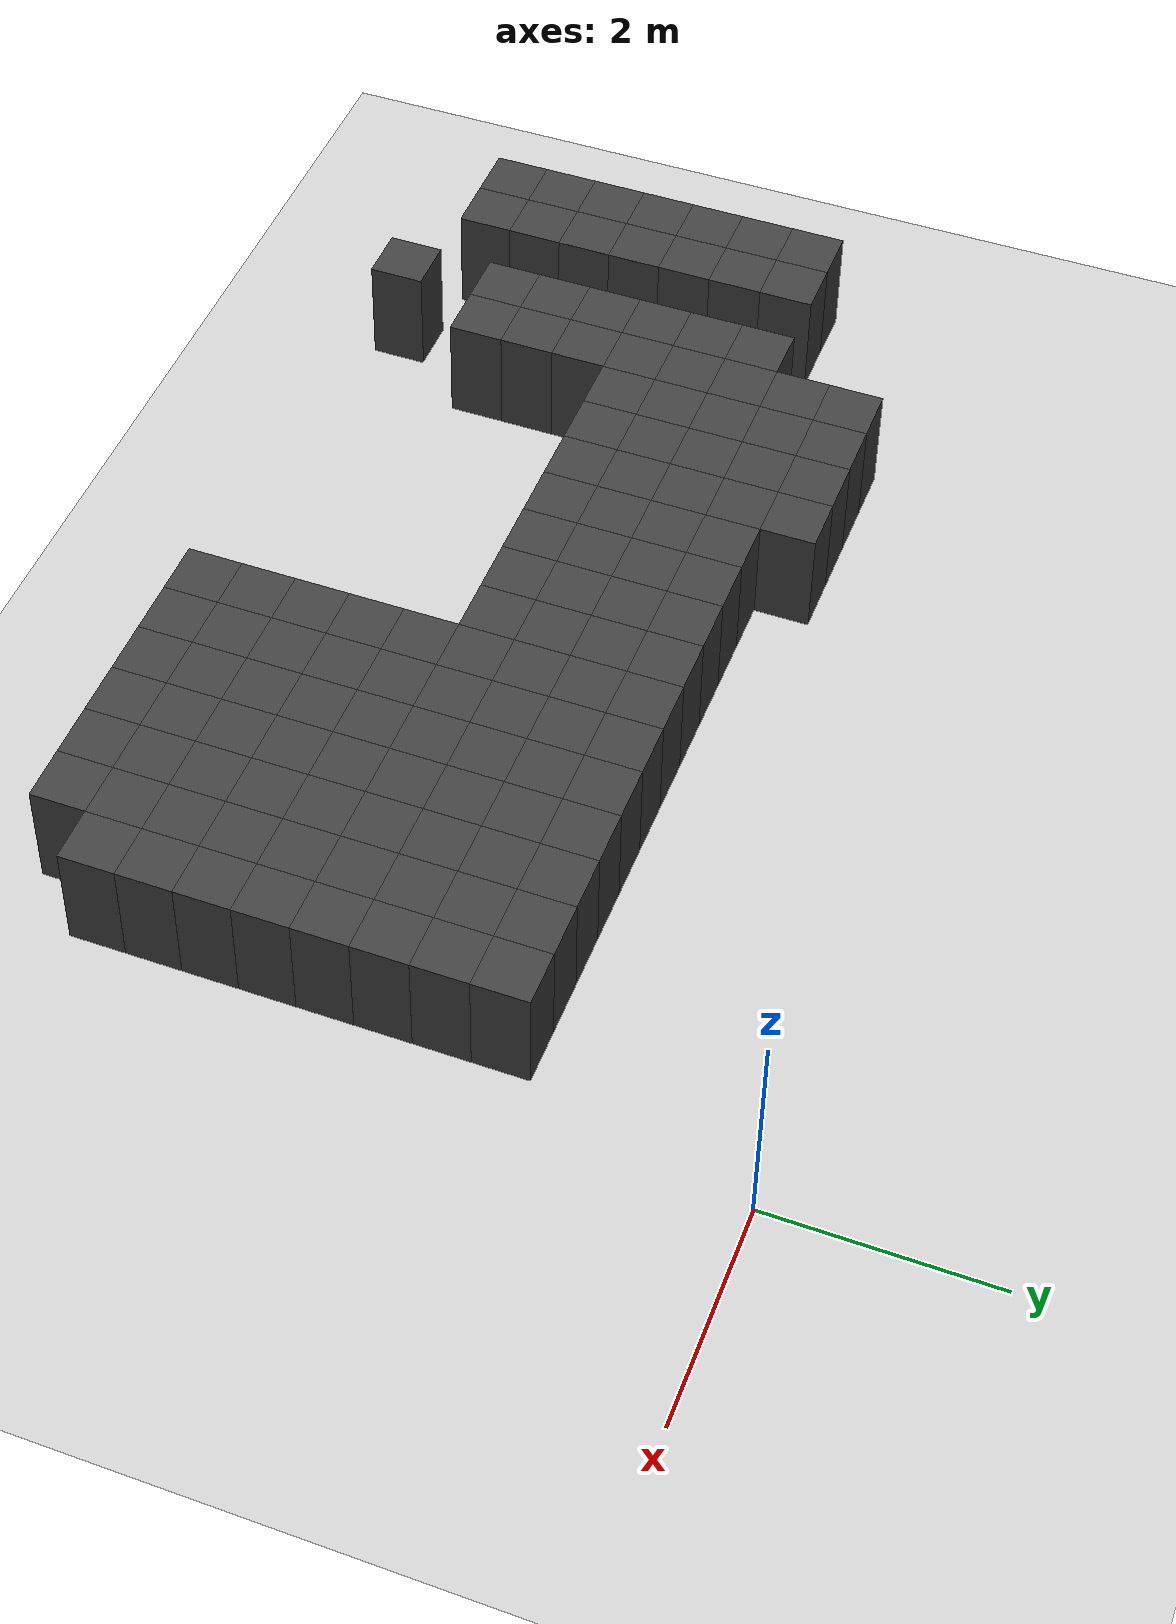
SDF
<sdf version="1.7">
 <world name="map_14888">
  <model name="ground_plane">
   <static>true</static>
   <link name="link">
    <collision name="collision">
     <geometry><plane><normal>0 0 1</normal><size>200 200</size></plane></geometry>
    </collision>
    <visual name="visual">
     <geometry><plane><normal>0 0 1</normal><size>200 200</size></plane></geometry>
     <material><ambient>0.8 0.8 0.8 1</ambient><diffuse>0.8 0.8 0.8 1</diffuse></material>
    </visual>
   </link>
  </model>
  <model name="maze_environment">
   <static>true</static>
   <link name="wall_994">
    <pose>-7.750 -1.750 0.500 0 0 0</pose>
    <collision name="col"><geometry><box><size>0.5 0.5 1.0</size></box></geometry></collision>
    <visual name="vis">
     <geometry><box><size>0.5 0.5 1.0</size></box></geometry>
     <material><ambient>0.15 0.15 0.15 1</ambient><diffuse>0.25 0.25 0.25 1</diffuse></material>
    </visual>
   </link>
   <link name="wall_995">
    <pose>-7.250 -1.750 0.500 0 0 0</pose>
    <collision name="col"><geometry><box><size>0.5 0.5 1.0</size></box></geometry></collision>
    <visual name="vis">
     <geometry><box><size>0.5 0.5 1.0</size></box></geometry>
     <material><ambient>0.15 0.15 0.15 1</ambient><diffuse>0.25 0.25 0.25 1</diffuse></material>
    </visual>
   </link>
   <link name="wall_996">
    <pose>-6.750 -1.750 0.500 0 0 0</pose>
    <collision name="col"><geometry><box><size>0.5 0.5 1.0</size></box></geometry></collision>
    <visual name="vis">
     <geometry><box><size>0.5 0.5 1.0</size></box></geometry>
     <material><ambient>0.15 0.15 0.15 1</ambient><diffuse>0.25 0.25 0.25 1</diffuse></material>
    </visual>
   </link>
   <link name="wall_997">
    <pose>-6.250 -1.750 0.500 0 0 0</pose>
    <collision name="col"><geometry><box><size>0.5 0.5 1.0</size></box></geometry></collision>
    <visual name="vis">
     <geometry><box><size>0.5 0.5 1.0</size></box></geometry>
     <material><ambient>0.15 0.15 0.15 1</ambient><diffuse>0.25 0.25 0.25 1</diffuse></material>
    </visual>
   </link>
   <link name="wall_1040">
    <pose>-7.750 -2.250 0.500 0 0 0</pose>
    <collision name="col"><geometry><box><size>0.5 0.5 1.0</size></box></geometry></collision>
    <visual name="vis">
     <geometry><box><size>0.5 0.5 1.0</size></box></geometry>
     <material><ambient>0.15 0.15 0.15 1</ambient><diffuse>0.25 0.25 0.25 1</diffuse></material>
    </visual>
   </link>
   <link name="wall_1041">
    <pose>-7.250 -2.250 0.500 0 0 0</pose>
    <collision name="col"><geometry><box><size>0.5 0.5 1.0</size></box></geometry></collision>
    <visual name="vis">
     <geometry><box><size>0.5 0.5 1.0</size></box></geometry>
     <material><ambient>0.15 0.15 0.15 1</ambient><diffuse>0.25 0.25 0.25 1</diffuse></material>
    </visual>
   </link>
   <link name="wall_1042">
    <pose>-6.750 -2.250 0.500 0 0 0</pose>
    <collision name="col"><geometry><box><size>0.5 0.5 1.0</size></box></geometry></collision>
    <visual name="vis">
     <geometry><box><size>0.5 0.5 1.0</size></box></geometry>
     <material><ambient>0.15 0.15 0.15 1</ambient><diffuse>0.25 0.25 0.25 1</diffuse></material>
    </visual>
   </link>
   <link name="wall_1043">
    <pose>-6.250 -2.250 0.500 0 0 0</pose>
    <collision name="col"><geometry><box><size>0.5 0.5 1.0</size></box></geometry></collision>
    <visual name="vis">
     <geometry><box><size>0.5 0.5 1.0</size></box></geometry>
     <material><ambient>0.15 0.15 0.15 1</ambient><diffuse>0.25 0.25 0.25 1</diffuse></material>
    </visual>
   </link>
   <link name="wall_1044">
    <pose>-5.750 -2.250 0.500 0 0 0</pose>
    <collision name="col"><geometry><box><size>0.5 0.5 1.0</size></box></geometry></collision>
    <visual name="vis">
     <geometry><box><size>0.5 0.5 1.0</size></box></geometry>
     <material><ambient>0.15 0.15 0.15 1</ambient><diffuse>0.25 0.25 0.25 1</diffuse></material>
    </visual>
   </link>
   <link name="wall_1045">
    <pose>-5.250 -2.250 0.500 0 0 0</pose>
    <collision name="col"><geometry><box><size>0.5 0.5 1.0</size></box></geometry></collision>
    <visual name="vis">
     <geometry><box><size>0.5 0.5 1.0</size></box></geometry>
     <material><ambient>0.15 0.15 0.15 1</ambient><diffuse>0.25 0.25 0.25 1</diffuse></material>
    </visual>
   </link>
   <link name="wall_1046">
    <pose>-4.750 -2.250 0.500 0 0 0</pose>
    <collision name="col"><geometry><box><size>0.5 0.5 1.0</size></box></geometry></collision>
    <visual name="vis">
     <geometry><box><size>0.5 0.5 1.0</size></box></geometry>
     <material><ambient>0.15 0.15 0.15 1</ambient><diffuse>0.25 0.25 0.25 1</diffuse></material>
    </visual>
   </link>
   <link name="wall_1047">
    <pose>-4.250 -2.250 0.500 0 0 0</pose>
    <collision name="col"><geometry><box><size>0.5 0.5 1.0</size></box></geometry></collision>
    <visual name="vis">
     <geometry><box><size>0.5 0.5 1.0</size></box></geometry>
     <material><ambient>0.15 0.15 0.15 1</ambient><diffuse>0.25 0.25 0.25 1</diffuse></material>
    </visual>
   </link>
   <link name="wall_1048">
    <pose>-3.750 -2.250 0.500 0 0 0</pose>
    <collision name="col"><geometry><box><size>0.5 0.5 1.0</size></box></geometry></collision>
    <visual name="vis">
     <geometry><box><size>0.5 0.5 1.0</size></box></geometry>
     <material><ambient>0.15 0.15 0.15 1</ambient><diffuse>0.25 0.25 0.25 1</diffuse></material>
    </visual>
   </link>
   <link name="wall_1049">
    <pose>-3.250 -2.250 0.500 0 0 0</pose>
    <collision name="col"><geometry><box><size>0.5 0.5 1.0</size></box></geometry></collision>
    <visual name="vis">
     <geometry><box><size>0.5 0.5 1.0</size></box></geometry>
     <material><ambient>0.15 0.15 0.15 1</ambient><diffuse>0.25 0.25 0.25 1</diffuse></material>
    </visual>
   </link>
   <link name="wall_1050">
    <pose>-2.750 -2.250 0.500 0 0 0</pose>
    <collision name="col"><geometry><box><size>0.5 0.5 1.0</size></box></geometry></collision>
    <visual name="vis">
     <geometry><box><size>0.5 0.5 1.0</size></box></geometry>
     <material><ambient>0.15 0.15 0.15 1</ambient><diffuse>0.25 0.25 0.25 1</diffuse></material>
    </visual>
   </link>
   <link name="wall_1051">
    <pose>-2.250 -2.250 0.500 0 0 0</pose>
    <collision name="col"><geometry><box><size>0.5 0.5 1.0</size></box></geometry></collision>
    <visual name="vis">
     <geometry><box><size>0.5 0.5 1.0</size></box></geometry>
     <material><ambient>0.15 0.15 0.15 1</ambient><diffuse>0.25 0.25 0.25 1</diffuse></material>
    </visual>
   </link>
   <link name="wall_1052">
    <pose>-1.750 -2.250 0.500 0 0 0</pose>
    <collision name="col"><geometry><box><size>0.5 0.5 1.0</size></box></geometry></collision>
    <visual name="vis">
     <geometry><box><size>0.5 0.5 1.0</size></box></geometry>
     <material><ambient>0.15 0.15 0.15 1</ambient><diffuse>0.25 0.25 0.25 1</diffuse></material>
    </visual>
   </link>
   <link name="wall_1053">
    <pose>-1.250 -2.250 0.500 0 0 0</pose>
    <collision name="col"><geometry><box><size>0.5 0.5 1.0</size></box></geometry></collision>
    <visual name="vis">
     <geometry><box><size>0.5 0.5 1.0</size></box></geometry>
     <material><ambient>0.15 0.15 0.15 1</ambient><diffuse>0.25 0.25 0.25 1</diffuse></material>
    </visual>
   </link>
   <link name="wall_1054">
    <pose>-0.750 -2.250 0.500 0 0 0</pose>
    <collision name="col"><geometry><box><size>0.5 0.5 1.0</size></box></geometry></collision>
    <visual name="vis">
     <geometry><box><size>0.5 0.5 1.0</size></box></geometry>
     <material><ambient>0.15 0.15 0.15 1</ambient><diffuse>0.25 0.25 0.25 1</diffuse></material>
    </visual>
   </link>
   <link name="wall_1086">
    <pose>-9.750 -2.750 0.500 0 0 0</pose>
    <collision name="col"><geometry><box><size>0.5 0.5 1.0</size></box></geometry></collision>
    <visual name="vis">
     <geometry><box><size>0.5 0.5 1.0</size></box></geometry>
     <material><ambient>0.15 0.15 0.15 1</ambient><diffuse>0.25 0.25 0.25 1</diffuse></material>
    </visual>
   </link>
   <link name="wall_1087">
    <pose>-9.250 -2.750 0.500 0 0 0</pose>
    <collision name="col"><geometry><box><size>0.5 0.5 1.0</size></box></geometry></collision>
    <visual name="vis">
     <geometry><box><size>0.5 0.5 1.0</size></box></geometry>
     <material><ambient>0.15 0.15 0.15 1</ambient><diffuse>0.25 0.25 0.25 1</diffuse></material>
    </visual>
   </link>
   <link name="wall_1088">
    <pose>-8.250 -2.750 0.500 0 0 0</pose>
    <collision name="col"><geometry><box><size>0.5 0.5 1.0</size></box></geometry></collision>
    <visual name="vis">
     <geometry><box><size>0.5 0.5 1.0</size></box></geometry>
     <material><ambient>0.15 0.15 0.15 1</ambient><diffuse>0.25 0.25 0.25 1</diffuse></material>
    </visual>
   </link>
   <link name="wall_1089">
    <pose>-7.750 -2.750 0.500 0 0 0</pose>
    <collision name="col"><geometry><box><size>0.5 0.5 1.0</size></box></geometry></collision>
    <visual name="vis">
     <geometry><box><size>0.5 0.5 1.0</size></box></geometry>
     <material><ambient>0.15 0.15 0.15 1</ambient><diffuse>0.25 0.25 0.25 1</diffuse></material>
    </visual>
   </link>
   <link name="wall_1090">
    <pose>-7.250 -2.750 0.500 0 0 0</pose>
    <collision name="col"><geometry><box><size>0.5 0.5 1.0</size></box></geometry></collision>
    <visual name="vis">
     <geometry><box><size>0.5 0.5 1.0</size></box></geometry>
     <material><ambient>0.15 0.15 0.15 1</ambient><diffuse>0.25 0.25 0.25 1</diffuse></material>
    </visual>
   </link>
   <link name="wall_1091">
    <pose>-6.750 -2.750 0.500 0 0 0</pose>
    <collision name="col"><geometry><box><size>0.5 0.5 1.0</size></box></geometry></collision>
    <visual name="vis">
     <geometry><box><size>0.5 0.5 1.0</size></box></geometry>
     <material><ambient>0.15 0.15 0.15 1</ambient><diffuse>0.25 0.25 0.25 1</diffuse></material>
    </visual>
   </link>
   <link name="wall_1092">
    <pose>-6.250 -2.750 0.500 0 0 0</pose>
    <collision name="col"><geometry><box><size>0.5 0.5 1.0</size></box></geometry></collision>
    <visual name="vis">
     <geometry><box><size>0.5 0.5 1.0</size></box></geometry>
     <material><ambient>0.15 0.15 0.15 1</ambient><diffuse>0.25 0.25 0.25 1</diffuse></material>
    </visual>
   </link>
   <link name="wall_1093">
    <pose>-5.750 -2.750 0.500 0 0 0</pose>
    <collision name="col"><geometry><box><size>0.5 0.5 1.0</size></box></geometry></collision>
    <visual name="vis">
     <geometry><box><size>0.5 0.5 1.0</size></box></geometry>
     <material><ambient>0.15 0.15 0.15 1</ambient><diffuse>0.25 0.25 0.25 1</diffuse></material>
    </visual>
   </link>
   <link name="wall_1094">
    <pose>-5.250 -2.750 0.500 0 0 0</pose>
    <collision name="col"><geometry><box><size>0.5 0.5 1.0</size></box></geometry></collision>
    <visual name="vis">
     <geometry><box><size>0.5 0.5 1.0</size></box></geometry>
     <material><ambient>0.15 0.15 0.15 1</ambient><diffuse>0.25 0.25 0.25 1</diffuse></material>
    </visual>
   </link>
   <link name="wall_1095">
    <pose>-4.750 -2.750 0.500 0 0 0</pose>
    <collision name="col"><geometry><box><size>0.5 0.5 1.0</size></box></geometry></collision>
    <visual name="vis">
     <geometry><box><size>0.5 0.5 1.0</size></box></geometry>
     <material><ambient>0.15 0.15 0.15 1</ambient><diffuse>0.25 0.25 0.25 1</diffuse></material>
    </visual>
   </link>
   <link name="wall_1096">
    <pose>-4.250 -2.750 0.500 0 0 0</pose>
    <collision name="col"><geometry><box><size>0.5 0.5 1.0</size></box></geometry></collision>
    <visual name="vis">
     <geometry><box><size>0.5 0.5 1.0</size></box></geometry>
     <material><ambient>0.15 0.15 0.15 1</ambient><diffuse>0.25 0.25 0.25 1</diffuse></material>
    </visual>
   </link>
   <link name="wall_1097">
    <pose>-3.750 -2.750 0.500 0 0 0</pose>
    <collision name="col"><geometry><box><size>0.5 0.5 1.0</size></box></geometry></collision>
    <visual name="vis">
     <geometry><box><size>0.5 0.5 1.0</size></box></geometry>
     <material><ambient>0.15 0.15 0.15 1</ambient><diffuse>0.25 0.25 0.25 1</diffuse></material>
    </visual>
   </link>
   <link name="wall_1098">
    <pose>-3.250 -2.750 0.500 0 0 0</pose>
    <collision name="col"><geometry><box><size>0.5 0.5 1.0</size></box></geometry></collision>
    <visual name="vis">
     <geometry><box><size>0.5 0.5 1.0</size></box></geometry>
     <material><ambient>0.15 0.15 0.15 1</ambient><diffuse>0.25 0.25 0.25 1</diffuse></material>
    </visual>
   </link>
   <link name="wall_1099">
    <pose>-2.750 -2.750 0.500 0 0 0</pose>
    <collision name="col"><geometry><box><size>0.5 0.5 1.0</size></box></geometry></collision>
    <visual name="vis">
     <geometry><box><size>0.5 0.5 1.0</size></box></geometry>
     <material><ambient>0.15 0.15 0.15 1</ambient><diffuse>0.25 0.25 0.25 1</diffuse></material>
    </visual>
   </link>
   <link name="wall_1100">
    <pose>-2.250 -2.750 0.500 0 0 0</pose>
    <collision name="col"><geometry><box><size>0.5 0.5 1.0</size></box></geometry></collision>
    <visual name="vis">
     <geometry><box><size>0.5 0.5 1.0</size></box></geometry>
     <material><ambient>0.15 0.15 0.15 1</ambient><diffuse>0.25 0.25 0.25 1</diffuse></material>
    </visual>
   </link>
   <link name="wall_1101">
    <pose>-1.750 -2.750 0.500 0 0 0</pose>
    <collision name="col"><geometry><box><size>0.5 0.5 1.0</size></box></geometry></collision>
    <visual name="vis">
     <geometry><box><size>0.5 0.5 1.0</size></box></geometry>
     <material><ambient>0.15 0.15 0.15 1</ambient><diffuse>0.25 0.25 0.25 1</diffuse></material>
    </visual>
   </link>
   <link name="wall_1102">
    <pose>-1.250 -2.750 0.500 0 0 0</pose>
    <collision name="col"><geometry><box><size>0.5 0.5 1.0</size></box></geometry></collision>
    <visual name="vis">
     <geometry><box><size>0.5 0.5 1.0</size></box></geometry>
     <material><ambient>0.15 0.15 0.15 1</ambient><diffuse>0.25 0.25 0.25 1</diffuse></material>
    </visual>
   </link>
   <link name="wall_1103">
    <pose>-0.750 -2.750 0.500 0 0 0</pose>
    <collision name="col"><geometry><box><size>0.5 0.5 1.0</size></box></geometry></collision>
    <visual name="vis">
     <geometry><box><size>0.5 0.5 1.0</size></box></geometry>
     <material><ambient>0.15 0.15 0.15 1</ambient><diffuse>0.25 0.25 0.25 1</diffuse></material>
    </visual>
   </link>
   <link name="wall_1135">
    <pose>-9.750 -3.250 0.500 0 0 0</pose>
    <collision name="col"><geometry><box><size>0.5 0.5 1.0</size></box></geometry></collision>
    <visual name="vis">
     <geometry><box><size>0.5 0.5 1.0</size></box></geometry>
     <material><ambient>0.15 0.15 0.15 1</ambient><diffuse>0.25 0.25 0.25 1</diffuse></material>
    </visual>
   </link>
   <link name="wall_1136">
    <pose>-9.250 -3.250 0.500 0 0 0</pose>
    <collision name="col"><geometry><box><size>0.5 0.5 1.0</size></box></geometry></collision>
    <visual name="vis">
     <geometry><box><size>0.5 0.5 1.0</size></box></geometry>
     <material><ambient>0.15 0.15 0.15 1</ambient><diffuse>0.25 0.25 0.25 1</diffuse></material>
    </visual>
   </link>
   <link name="wall_1137">
    <pose>-8.250 -3.250 0.500 0 0 0</pose>
    <collision name="col"><geometry><box><size>0.5 0.5 1.0</size></box></geometry></collision>
    <visual name="vis">
     <geometry><box><size>0.5 0.5 1.0</size></box></geometry>
     <material><ambient>0.15 0.15 0.15 1</ambient><diffuse>0.25 0.25 0.25 1</diffuse></material>
    </visual>
   </link>
   <link name="wall_1138">
    <pose>-7.750 -3.250 0.500 0 0 0</pose>
    <collision name="col"><geometry><box><size>0.5 0.5 1.0</size></box></geometry></collision>
    <visual name="vis">
     <geometry><box><size>0.5 0.5 1.0</size></box></geometry>
     <material><ambient>0.15 0.15 0.15 1</ambient><diffuse>0.25 0.25 0.25 1</diffuse></material>
    </visual>
   </link>
   <link name="wall_1139">
    <pose>-7.250 -3.250 0.500 0 0 0</pose>
    <collision name="col"><geometry><box><size>0.5 0.5 1.0</size></box></geometry></collision>
    <visual name="vis">
     <geometry><box><size>0.5 0.5 1.0</size></box></geometry>
     <material><ambient>0.15 0.15 0.15 1</ambient><diffuse>0.25 0.25 0.25 1</diffuse></material>
    </visual>
   </link>
   <link name="wall_1140">
    <pose>-6.750 -3.250 0.500 0 0 0</pose>
    <collision name="col"><geometry><box><size>0.5 0.5 1.0</size></box></geometry></collision>
    <visual name="vis">
     <geometry><box><size>0.5 0.5 1.0</size></box></geometry>
     <material><ambient>0.15 0.15 0.15 1</ambient><diffuse>0.25 0.25 0.25 1</diffuse></material>
    </visual>
   </link>
   <link name="wall_1141">
    <pose>-6.250 -3.250 0.500 0 0 0</pose>
    <collision name="col"><geometry><box><size>0.5 0.5 1.0</size></box></geometry></collision>
    <visual name="vis">
     <geometry><box><size>0.5 0.5 1.0</size></box></geometry>
     <material><ambient>0.15 0.15 0.15 1</ambient><diffuse>0.25 0.25 0.25 1</diffuse></material>
    </visual>
   </link>
   <link name="wall_1142">
    <pose>-5.750 -3.250 0.500 0 0 0</pose>
    <collision name="col"><geometry><box><size>0.5 0.5 1.0</size></box></geometry></collision>
    <visual name="vis">
     <geometry><box><size>0.5 0.5 1.0</size></box></geometry>
     <material><ambient>0.15 0.15 0.15 1</ambient><diffuse>0.25 0.25 0.25 1</diffuse></material>
    </visual>
   </link>
   <link name="wall_1143">
    <pose>-5.250 -3.250 0.500 0 0 0</pose>
    <collision name="col"><geometry><box><size>0.5 0.5 1.0</size></box></geometry></collision>
    <visual name="vis">
     <geometry><box><size>0.5 0.5 1.0</size></box></geometry>
     <material><ambient>0.15 0.15 0.15 1</ambient><diffuse>0.25 0.25 0.25 1</diffuse></material>
    </visual>
   </link>
   <link name="wall_1144">
    <pose>-4.750 -3.250 0.500 0 0 0</pose>
    <collision name="col"><geometry><box><size>0.5 0.5 1.0</size></box></geometry></collision>
    <visual name="vis">
     <geometry><box><size>0.5 0.5 1.0</size></box></geometry>
     <material><ambient>0.15 0.15 0.15 1</ambient><diffuse>0.25 0.25 0.25 1</diffuse></material>
    </visual>
   </link>
   <link name="wall_1145">
    <pose>-4.250 -3.250 0.500 0 0 0</pose>
    <collision name="col"><geometry><box><size>0.5 0.5 1.0</size></box></geometry></collision>
    <visual name="vis">
     <geometry><box><size>0.5 0.5 1.0</size></box></geometry>
     <material><ambient>0.15 0.15 0.15 1</ambient><diffuse>0.25 0.25 0.25 1</diffuse></material>
    </visual>
   </link>
   <link name="wall_1146">
    <pose>-3.750 -3.250 0.500 0 0 0</pose>
    <collision name="col"><geometry><box><size>0.5 0.5 1.0</size></box></geometry></collision>
    <visual name="vis">
     <geometry><box><size>0.5 0.5 1.0</size></box></geometry>
     <material><ambient>0.15 0.15 0.15 1</ambient><diffuse>0.25 0.25 0.25 1</diffuse></material>
    </visual>
   </link>
   <link name="wall_1147">
    <pose>-3.250 -3.250 0.500 0 0 0</pose>
    <collision name="col"><geometry><box><size>0.5 0.5 1.0</size></box></geometry></collision>
    <visual name="vis">
     <geometry><box><size>0.5 0.5 1.0</size></box></geometry>
     <material><ambient>0.15 0.15 0.15 1</ambient><diffuse>0.25 0.25 0.25 1</diffuse></material>
    </visual>
   </link>
   <link name="wall_1148">
    <pose>-2.750 -3.250 0.500 0 0 0</pose>
    <collision name="col"><geometry><box><size>0.5 0.5 1.0</size></box></geometry></collision>
    <visual name="vis">
     <geometry><box><size>0.5 0.5 1.0</size></box></geometry>
     <material><ambient>0.15 0.15 0.15 1</ambient><diffuse>0.25 0.25 0.25 1</diffuse></material>
    </visual>
   </link>
   <link name="wall_1149">
    <pose>-2.250 -3.250 0.500 0 0 0</pose>
    <collision name="col"><geometry><box><size>0.5 0.5 1.0</size></box></geometry></collision>
    <visual name="vis">
     <geometry><box><size>0.5 0.5 1.0</size></box></geometry>
     <material><ambient>0.15 0.15 0.15 1</ambient><diffuse>0.25 0.25 0.25 1</diffuse></material>
    </visual>
   </link>
   <link name="wall_1150">
    <pose>-1.750 -3.250 0.500 0 0 0</pose>
    <collision name="col"><geometry><box><size>0.5 0.5 1.0</size></box></geometry></collision>
    <visual name="vis">
     <geometry><box><size>0.5 0.5 1.0</size></box></geometry>
     <material><ambient>0.15 0.15 0.15 1</ambient><diffuse>0.25 0.25 0.25 1</diffuse></material>
    </visual>
   </link>
   <link name="wall_1151">
    <pose>-1.250 -3.250 0.500 0 0 0</pose>
    <collision name="col"><geometry><box><size>0.5 0.5 1.0</size></box></geometry></collision>
    <visual name="vis">
     <geometry><box><size>0.5 0.5 1.0</size></box></geometry>
     <material><ambient>0.15 0.15 0.15 1</ambient><diffuse>0.25 0.25 0.25 1</diffuse></material>
    </visual>
   </link>
   <link name="wall_1152">
    <pose>-0.750 -3.250 0.500 0 0 0</pose>
    <collision name="col"><geometry><box><size>0.5 0.5 1.0</size></box></geometry></collision>
    <visual name="vis">
     <geometry><box><size>0.5 0.5 1.0</size></box></geometry>
     <material><ambient>0.15 0.15 0.15 1</ambient><diffuse>0.25 0.25 0.25 1</diffuse></material>
    </visual>
   </link>
   <link name="wall_1184">
    <pose>-9.750 -3.750 0.500 0 0 0</pose>
    <collision name="col"><geometry><box><size>0.5 0.5 1.0</size></box></geometry></collision>
    <visual name="vis">
     <geometry><box><size>0.5 0.5 1.0</size></box></geometry>
     <material><ambient>0.15 0.15 0.15 1</ambient><diffuse>0.25 0.25 0.25 1</diffuse></material>
    </visual>
   </link>
   <link name="wall_1185">
    <pose>-9.250 -3.750 0.500 0 0 0</pose>
    <collision name="col"><geometry><box><size>0.5 0.5 1.0</size></box></geometry></collision>
    <visual name="vis">
     <geometry><box><size>0.5 0.5 1.0</size></box></geometry>
     <material><ambient>0.15 0.15 0.15 1</ambient><diffuse>0.25 0.25 0.25 1</diffuse></material>
    </visual>
   </link>
   <link name="wall_1186">
    <pose>-8.250 -3.750 0.500 0 0 0</pose>
    <collision name="col"><geometry><box><size>0.5 0.5 1.0</size></box></geometry></collision>
    <visual name="vis">
     <geometry><box><size>0.5 0.5 1.0</size></box></geometry>
     <material><ambient>0.15 0.15 0.15 1</ambient><diffuse>0.25 0.25 0.25 1</diffuse></material>
    </visual>
   </link>
   <link name="wall_1187">
    <pose>-7.750 -3.750 0.500 0 0 0</pose>
    <collision name="col"><geometry><box><size>0.5 0.5 1.0</size></box></geometry></collision>
    <visual name="vis">
     <geometry><box><size>0.5 0.5 1.0</size></box></geometry>
     <material><ambient>0.15 0.15 0.15 1</ambient><diffuse>0.25 0.25 0.25 1</diffuse></material>
    </visual>
   </link>
   <link name="wall_1188">
    <pose>-7.250 -3.750 0.500 0 0 0</pose>
    <collision name="col"><geometry><box><size>0.5 0.5 1.0</size></box></geometry></collision>
    <visual name="vis">
     <geometry><box><size>0.5 0.5 1.0</size></box></geometry>
     <material><ambient>0.15 0.15 0.15 1</ambient><diffuse>0.25 0.25 0.25 1</diffuse></material>
    </visual>
   </link>
   <link name="wall_1189">
    <pose>-6.750 -3.750 0.500 0 0 0</pose>
    <collision name="col"><geometry><box><size>0.5 0.5 1.0</size></box></geometry></collision>
    <visual name="vis">
     <geometry><box><size>0.5 0.5 1.0</size></box></geometry>
     <material><ambient>0.15 0.15 0.15 1</ambient><diffuse>0.25 0.25 0.25 1</diffuse></material>
    </visual>
   </link>
   <link name="wall_1190">
    <pose>-6.250 -3.750 0.500 0 0 0</pose>
    <collision name="col"><geometry><box><size>0.5 0.5 1.0</size></box></geometry></collision>
    <visual name="vis">
     <geometry><box><size>0.5 0.5 1.0</size></box></geometry>
     <material><ambient>0.15 0.15 0.15 1</ambient><diffuse>0.25 0.25 0.25 1</diffuse></material>
    </visual>
   </link>
   <link name="wall_1191">
    <pose>-5.750 -3.750 0.500 0 0 0</pose>
    <collision name="col"><geometry><box><size>0.5 0.5 1.0</size></box></geometry></collision>
    <visual name="vis">
     <geometry><box><size>0.5 0.5 1.0</size></box></geometry>
     <material><ambient>0.15 0.15 0.15 1</ambient><diffuse>0.25 0.25 0.25 1</diffuse></material>
    </visual>
   </link>
   <link name="wall_1192">
    <pose>-5.250 -3.750 0.500 0 0 0</pose>
    <collision name="col"><geometry><box><size>0.5 0.5 1.0</size></box></geometry></collision>
    <visual name="vis">
     <geometry><box><size>0.5 0.5 1.0</size></box></geometry>
     <material><ambient>0.15 0.15 0.15 1</ambient><diffuse>0.25 0.25 0.25 1</diffuse></material>
    </visual>
   </link>
   <link name="wall_1193">
    <pose>-4.750 -3.750 0.500 0 0 0</pose>
    <collision name="col"><geometry><box><size>0.5 0.5 1.0</size></box></geometry></collision>
    <visual name="vis">
     <geometry><box><size>0.5 0.5 1.0</size></box></geometry>
     <material><ambient>0.15 0.15 0.15 1</ambient><diffuse>0.25 0.25 0.25 1</diffuse></material>
    </visual>
   </link>
   <link name="wall_1194">
    <pose>-4.250 -3.750 0.500 0 0 0</pose>
    <collision name="col"><geometry><box><size>0.5 0.5 1.0</size></box></geometry></collision>
    <visual name="vis">
     <geometry><box><size>0.5 0.5 1.0</size></box></geometry>
     <material><ambient>0.15 0.15 0.15 1</ambient><diffuse>0.25 0.25 0.25 1</diffuse></material>
    </visual>
   </link>
   <link name="wall_1195">
    <pose>-3.750 -3.750 0.500 0 0 0</pose>
    <collision name="col"><geometry><box><size>0.5 0.5 1.0</size></box></geometry></collision>
    <visual name="vis">
     <geometry><box><size>0.5 0.5 1.0</size></box></geometry>
     <material><ambient>0.15 0.15 0.15 1</ambient><diffuse>0.25 0.25 0.25 1</diffuse></material>
    </visual>
   </link>
   <link name="wall_1196">
    <pose>-3.250 -3.750 0.500 0 0 0</pose>
    <collision name="col"><geometry><box><size>0.5 0.5 1.0</size></box></geometry></collision>
    <visual name="vis">
     <geometry><box><size>0.5 0.5 1.0</size></box></geometry>
     <material><ambient>0.15 0.15 0.15 1</ambient><diffuse>0.25 0.25 0.25 1</diffuse></material>
    </visual>
   </link>
   <link name="wall_1197">
    <pose>-2.750 -3.750 0.500 0 0 0</pose>
    <collision name="col"><geometry><box><size>0.5 0.5 1.0</size></box></geometry></collision>
    <visual name="vis">
     <geometry><box><size>0.5 0.5 1.0</size></box></geometry>
     <material><ambient>0.15 0.15 0.15 1</ambient><diffuse>0.25 0.25 0.25 1</diffuse></material>
    </visual>
   </link>
   <link name="wall_1198">
    <pose>-2.250 -3.750 0.500 0 0 0</pose>
    <collision name="col"><geometry><box><size>0.5 0.5 1.0</size></box></geometry></collision>
    <visual name="vis">
     <geometry><box><size>0.5 0.5 1.0</size></box></geometry>
     <material><ambient>0.15 0.15 0.15 1</ambient><diffuse>0.25 0.25 0.25 1</diffuse></material>
    </visual>
   </link>
   <link name="wall_1199">
    <pose>-1.750 -3.750 0.500 0 0 0</pose>
    <collision name="col"><geometry><box><size>0.5 0.5 1.0</size></box></geometry></collision>
    <visual name="vis">
     <geometry><box><size>0.5 0.5 1.0</size></box></geometry>
     <material><ambient>0.15 0.15 0.15 1</ambient><diffuse>0.25 0.25 0.25 1</diffuse></material>
    </visual>
   </link>
   <link name="wall_1200">
    <pose>-1.250 -3.750 0.500 0 0 0</pose>
    <collision name="col"><geometry><box><size>0.5 0.5 1.0</size></box></geometry></collision>
    <visual name="vis">
     <geometry><box><size>0.5 0.5 1.0</size></box></geometry>
     <material><ambient>0.15 0.15 0.15 1</ambient><diffuse>0.25 0.25 0.25 1</diffuse></material>
    </visual>
   </link>
   <link name="wall_1201">
    <pose>-0.750 -3.750 0.500 0 0 0</pose>
    <collision name="col"><geometry><box><size>0.5 0.5 1.0</size></box></geometry></collision>
    <visual name="vis">
     <geometry><box><size>0.5 0.5 1.0</size></box></geometry>
     <material><ambient>0.15 0.15 0.15 1</ambient><diffuse>0.25 0.25 0.25 1</diffuse></material>
    </visual>
   </link>
   <link name="wall_1233">
    <pose>-9.750 -4.250 0.500 0 0 0</pose>
    <collision name="col"><geometry><box><size>0.5 0.5 1.0</size></box></geometry></collision>
    <visual name="vis">
     <geometry><box><size>0.5 0.5 1.0</size></box></geometry>
     <material><ambient>0.15 0.15 0.15 1</ambient><diffuse>0.25 0.25 0.25 1</diffuse></material>
    </visual>
   </link>
   <link name="wall_1234">
    <pose>-9.250 -4.250 0.500 0 0 0</pose>
    <collision name="col"><geometry><box><size>0.5 0.5 1.0</size></box></geometry></collision>
    <visual name="vis">
     <geometry><box><size>0.5 0.5 1.0</size></box></geometry>
     <material><ambient>0.15 0.15 0.15 1</ambient><diffuse>0.25 0.25 0.25 1</diffuse></material>
    </visual>
   </link>
   <link name="wall_1235">
    <pose>-8.250 -4.250 0.500 0 0 0</pose>
    <collision name="col"><geometry><box><size>0.5 0.5 1.0</size></box></geometry></collision>
    <visual name="vis">
     <geometry><box><size>0.5 0.5 1.0</size></box></geometry>
     <material><ambient>0.15 0.15 0.15 1</ambient><diffuse>0.25 0.25 0.25 1</diffuse></material>
    </visual>
   </link>
   <link name="wall_1236">
    <pose>-7.750 -4.250 0.500 0 0 0</pose>
    <collision name="col"><geometry><box><size>0.5 0.5 1.0</size></box></geometry></collision>
    <visual name="vis">
     <geometry><box><size>0.5 0.5 1.0</size></box></geometry>
     <material><ambient>0.15 0.15 0.15 1</ambient><diffuse>0.25 0.25 0.25 1</diffuse></material>
    </visual>
   </link>
   <link name="wall_1237">
    <pose>-3.750 -4.250 0.500 0 0 0</pose>
    <collision name="col"><geometry><box><size>0.5 0.5 1.0</size></box></geometry></collision>
    <visual name="vis">
     <geometry><box><size>0.5 0.5 1.0</size></box></geometry>
     <material><ambient>0.15 0.15 0.15 1</ambient><diffuse>0.25 0.25 0.25 1</diffuse></material>
    </visual>
   </link>
   <link name="wall_1238">
    <pose>-3.250 -4.250 0.500 0 0 0</pose>
    <collision name="col"><geometry><box><size>0.5 0.5 1.0</size></box></geometry></collision>
    <visual name="vis">
     <geometry><box><size>0.5 0.5 1.0</size></box></geometry>
     <material><ambient>0.15 0.15 0.15 1</ambient><diffuse>0.25 0.25 0.25 1</diffuse></material>
    </visual>
   </link>
   <link name="wall_1239">
    <pose>-2.750 -4.250 0.500 0 0 0</pose>
    <collision name="col"><geometry><box><size>0.5 0.5 1.0</size></box></geometry></collision>
    <visual name="vis">
     <geometry><box><size>0.5 0.5 1.0</size></box></geometry>
     <material><ambient>0.15 0.15 0.15 1</ambient><diffuse>0.25 0.25 0.25 1</diffuse></material>
    </visual>
   </link>
   <link name="wall_1240">
    <pose>-2.250 -4.250 0.500 0 0 0</pose>
    <collision name="col"><geometry><box><size>0.5 0.5 1.0</size></box></geometry></collision>
    <visual name="vis">
     <geometry><box><size>0.5 0.5 1.0</size></box></geometry>
     <material><ambient>0.15 0.15 0.15 1</ambient><diffuse>0.25 0.25 0.25 1</diffuse></material>
    </visual>
   </link>
   <link name="wall_1241">
    <pose>-1.750 -4.250 0.500 0 0 0</pose>
    <collision name="col"><geometry><box><size>0.5 0.5 1.0</size></box></geometry></collision>
    <visual name="vis">
     <geometry><box><size>0.5 0.5 1.0</size></box></geometry>
     <material><ambient>0.15 0.15 0.15 1</ambient><diffuse>0.25 0.25 0.25 1</diffuse></material>
    </visual>
   </link>
   <link name="wall_1242">
    <pose>-1.250 -4.250 0.500 0 0 0</pose>
    <collision name="col"><geometry><box><size>0.5 0.5 1.0</size></box></geometry></collision>
    <visual name="vis">
     <geometry><box><size>0.5 0.5 1.0</size></box></geometry>
     <material><ambient>0.15 0.15 0.15 1</ambient><diffuse>0.25 0.25 0.25 1</diffuse></material>
    </visual>
   </link>
   <link name="wall_1243">
    <pose>-0.750 -4.250 0.500 0 0 0</pose>
    <collision name="col"><geometry><box><size>0.5 0.5 1.0</size></box></geometry></collision>
    <visual name="vis">
     <geometry><box><size>0.5 0.5 1.0</size></box></geometry>
     <material><ambient>0.15 0.15 0.15 1</ambient><diffuse>0.25 0.25 0.25 1</diffuse></material>
    </visual>
   </link>
   <link name="wall_1267">
    <pose>-9.750 -4.750 0.500 0 0 0</pose>
    <collision name="col"><geometry><box><size>0.5 0.5 1.0</size></box></geometry></collision>
    <visual name="vis">
     <geometry><box><size>0.5 0.5 1.0</size></box></geometry>
     <material><ambient>0.15 0.15 0.15 1</ambient><diffuse>0.25 0.25 0.25 1</diffuse></material>
    </visual>
   </link>
   <link name="wall_1268">
    <pose>-9.250 -4.750 0.500 0 0 0</pose>
    <collision name="col"><geometry><box><size>0.5 0.5 1.0</size></box></geometry></collision>
    <visual name="vis">
     <geometry><box><size>0.5 0.5 1.0</size></box></geometry>
     <material><ambient>0.15 0.15 0.15 1</ambient><diffuse>0.25 0.25 0.25 1</diffuse></material>
    </visual>
   </link>
   <link name="wall_1269">
    <pose>-8.250 -4.750 0.500 0 0 0</pose>
    <collision name="col"><geometry><box><size>0.5 0.5 1.0</size></box></geometry></collision>
    <visual name="vis">
     <geometry><box><size>0.5 0.5 1.0</size></box></geometry>
     <material><ambient>0.15 0.15 0.15 1</ambient><diffuse>0.25 0.25 0.25 1</diffuse></material>
    </visual>
   </link>
   <link name="wall_1270">
    <pose>-7.750 -4.750 0.500 0 0 0</pose>
    <collision name="col"><geometry><box><size>0.5 0.5 1.0</size></box></geometry></collision>
    <visual name="vis">
     <geometry><box><size>0.5 0.5 1.0</size></box></geometry>
     <material><ambient>0.15 0.15 0.15 1</ambient><diffuse>0.25 0.25 0.25 1</diffuse></material>
    </visual>
   </link>
   <link name="wall_1271">
    <pose>-3.750 -4.750 0.500 0 0 0</pose>
    <collision name="col"><geometry><box><size>0.5 0.5 1.0</size></box></geometry></collision>
    <visual name="vis">
     <geometry><box><size>0.5 0.5 1.0</size></box></geometry>
     <material><ambient>0.15 0.15 0.15 1</ambient><diffuse>0.25 0.25 0.25 1</diffuse></material>
    </visual>
   </link>
   <link name="wall_1272">
    <pose>-3.250 -4.750 0.500 0 0 0</pose>
    <collision name="col"><geometry><box><size>0.5 0.5 1.0</size></box></geometry></collision>
    <visual name="vis">
     <geometry><box><size>0.5 0.5 1.0</size></box></geometry>
     <material><ambient>0.15 0.15 0.15 1</ambient><diffuse>0.25 0.25 0.25 1</diffuse></material>
    </visual>
   </link>
   <link name="wall_1273">
    <pose>-2.750 -4.750 0.500 0 0 0</pose>
    <collision name="col"><geometry><box><size>0.5 0.5 1.0</size></box></geometry></collision>
    <visual name="vis">
     <geometry><box><size>0.5 0.5 1.0</size></box></geometry>
     <material><ambient>0.15 0.15 0.15 1</ambient><diffuse>0.25 0.25 0.25 1</diffuse></material>
    </visual>
   </link>
   <link name="wall_1274">
    <pose>-2.250 -4.750 0.500 0 0 0</pose>
    <collision name="col"><geometry><box><size>0.5 0.5 1.0</size></box></geometry></collision>
    <visual name="vis">
     <geometry><box><size>0.5 0.5 1.0</size></box></geometry>
     <material><ambient>0.15 0.15 0.15 1</ambient><diffuse>0.25 0.25 0.25 1</diffuse></material>
    </visual>
   </link>
   <link name="wall_1275">
    <pose>-1.750 -4.750 0.500 0 0 0</pose>
    <collision name="col"><geometry><box><size>0.5 0.5 1.0</size></box></geometry></collision>
    <visual name="vis">
     <geometry><box><size>0.5 0.5 1.0</size></box></geometry>
     <material><ambient>0.15 0.15 0.15 1</ambient><diffuse>0.25 0.25 0.25 1</diffuse></material>
    </visual>
   </link>
   <link name="wall_1276">
    <pose>-1.250 -4.750 0.500 0 0 0</pose>
    <collision name="col"><geometry><box><size>0.5 0.5 1.0</size></box></geometry></collision>
    <visual name="vis">
     <geometry><box><size>0.5 0.5 1.0</size></box></geometry>
     <material><ambient>0.15 0.15 0.15 1</ambient><diffuse>0.25 0.25 0.25 1</diffuse></material>
    </visual>
   </link>
   <link name="wall_1277">
    <pose>-0.750 -4.750 0.500 0 0 0</pose>
    <collision name="col"><geometry><box><size>0.5 0.5 1.0</size></box></geometry></collision>
    <visual name="vis">
     <geometry><box><size>0.5 0.5 1.0</size></box></geometry>
     <material><ambient>0.15 0.15 0.15 1</ambient><diffuse>0.25 0.25 0.25 1</diffuse></material>
    </visual>
   </link>
   <link name="wall_1301">
    <pose>-9.750 -5.250 0.500 0 0 0</pose>
    <collision name="col"><geometry><box><size>0.5 0.5 1.0</size></box></geometry></collision>
    <visual name="vis">
     <geometry><box><size>0.5 0.5 1.0</size></box></geometry>
     <material><ambient>0.15 0.15 0.15 1</ambient><diffuse>0.25 0.25 0.25 1</diffuse></material>
    </visual>
   </link>
   <link name="wall_1302">
    <pose>-9.250 -5.250 0.500 0 0 0</pose>
    <collision name="col"><geometry><box><size>0.5 0.5 1.0</size></box></geometry></collision>
    <visual name="vis">
     <geometry><box><size>0.5 0.5 1.0</size></box></geometry>
     <material><ambient>0.15 0.15 0.15 1</ambient><diffuse>0.25 0.25 0.25 1</diffuse></material>
    </visual>
   </link>
   <link name="wall_1303">
    <pose>-8.250 -5.250 0.500 0 0 0</pose>
    <collision name="col"><geometry><box><size>0.5 0.5 1.0</size></box></geometry></collision>
    <visual name="vis">
     <geometry><box><size>0.5 0.5 1.0</size></box></geometry>
     <material><ambient>0.15 0.15 0.15 1</ambient><diffuse>0.25 0.25 0.25 1</diffuse></material>
    </visual>
   </link>
   <link name="wall_1304">
    <pose>-7.750 -5.250 0.500 0 0 0</pose>
    <collision name="col"><geometry><box><size>0.5 0.5 1.0</size></box></geometry></collision>
    <visual name="vis">
     <geometry><box><size>0.5 0.5 1.0</size></box></geometry>
     <material><ambient>0.15 0.15 0.15 1</ambient><diffuse>0.25 0.25 0.25 1</diffuse></material>
    </visual>
   </link>
   <link name="wall_1305">
    <pose>-3.750 -5.250 0.500 0 0 0</pose>
    <collision name="col"><geometry><box><size>0.5 0.5 1.0</size></box></geometry></collision>
    <visual name="vis">
     <geometry><box><size>0.5 0.5 1.0</size></box></geometry>
     <material><ambient>0.15 0.15 0.15 1</ambient><diffuse>0.25 0.25 0.25 1</diffuse></material>
    </visual>
   </link>
   <link name="wall_1306">
    <pose>-3.250 -5.250 0.500 0 0 0</pose>
    <collision name="col"><geometry><box><size>0.5 0.5 1.0</size></box></geometry></collision>
    <visual name="vis">
     <geometry><box><size>0.5 0.5 1.0</size></box></geometry>
     <material><ambient>0.15 0.15 0.15 1</ambient><diffuse>0.25 0.25 0.25 1</diffuse></material>
    </visual>
   </link>
   <link name="wall_1307">
    <pose>-2.750 -5.250 0.500 0 0 0</pose>
    <collision name="col"><geometry><box><size>0.5 0.5 1.0</size></box></geometry></collision>
    <visual name="vis">
     <geometry><box><size>0.5 0.5 1.0</size></box></geometry>
     <material><ambient>0.15 0.15 0.15 1</ambient><diffuse>0.25 0.25 0.25 1</diffuse></material>
    </visual>
   </link>
   <link name="wall_1308">
    <pose>-2.250 -5.250 0.500 0 0 0</pose>
    <collision name="col"><geometry><box><size>0.5 0.5 1.0</size></box></geometry></collision>
    <visual name="vis">
     <geometry><box><size>0.5 0.5 1.0</size></box></geometry>
     <material><ambient>0.15 0.15 0.15 1</ambient><diffuse>0.25 0.25 0.25 1</diffuse></material>
    </visual>
   </link>
   <link name="wall_1309">
    <pose>-1.750 -5.250 0.500 0 0 0</pose>
    <collision name="col"><geometry><box><size>0.5 0.5 1.0</size></box></geometry></collision>
    <visual name="vis">
     <geometry><box><size>0.5 0.5 1.0</size></box></geometry>
     <material><ambient>0.15 0.15 0.15 1</ambient><diffuse>0.25 0.25 0.25 1</diffuse></material>
    </visual>
   </link>
   <link name="wall_1310">
    <pose>-1.250 -5.250 0.500 0 0 0</pose>
    <collision name="col"><geometry><box><size>0.5 0.5 1.0</size></box></geometry></collision>
    <visual name="vis">
     <geometry><box><size>0.5 0.5 1.0</size></box></geometry>
     <material><ambient>0.15 0.15 0.15 1</ambient><diffuse>0.25 0.25 0.25 1</diffuse></material>
    </visual>
   </link>
   <link name="wall_1311">
    <pose>-0.750 -5.250 0.500 0 0 0</pose>
    <collision name="col"><geometry><box><size>0.5 0.5 1.0</size></box></geometry></collision>
    <visual name="vis">
     <geometry><box><size>0.5 0.5 1.0</size></box></geometry>
     <material><ambient>0.15 0.15 0.15 1</ambient><diffuse>0.25 0.25 0.25 1</diffuse></material>
    </visual>
   </link>
   <link name="wall_1325">
    <pose>-9.750 -5.750 0.500 0 0 0</pose>
    <collision name="col"><geometry><box><size>0.5 0.5 1.0</size></box></geometry></collision>
    <visual name="vis">
     <geometry><box><size>0.5 0.5 1.0</size></box></geometry>
     <material><ambient>0.15 0.15 0.15 1</ambient><diffuse>0.25 0.25 0.25 1</diffuse></material>
    </visual>
   </link>
   <link name="wall_1326">
    <pose>-9.250 -5.750 0.500 0 0 0</pose>
    <collision name="col"><geometry><box><size>0.5 0.5 1.0</size></box></geometry></collision>
    <visual name="vis">
     <geometry><box><size>0.5 0.5 1.0</size></box></geometry>
     <material><ambient>0.15 0.15 0.15 1</ambient><diffuse>0.25 0.25 0.25 1</diffuse></material>
    </visual>
   </link>
   <link name="wall_1327">
    <pose>-3.750 -5.750 0.500 0 0 0</pose>
    <collision name="col"><geometry><box><size>0.5 0.5 1.0</size></box></geometry></collision>
    <visual name="vis">
     <geometry><box><size>0.5 0.5 1.0</size></box></geometry>
     <material><ambient>0.15 0.15 0.15 1</ambient><diffuse>0.25 0.25 0.25 1</diffuse></material>
    </visual>
   </link>
   <link name="wall_1328">
    <pose>-3.250 -5.750 0.500 0 0 0</pose>
    <collision name="col"><geometry><box><size>0.5 0.5 1.0</size></box></geometry></collision>
    <visual name="vis">
     <geometry><box><size>0.5 0.5 1.0</size></box></geometry>
     <material><ambient>0.15 0.15 0.15 1</ambient><diffuse>0.25 0.25 0.25 1</diffuse></material>
    </visual>
   </link>
   <link name="wall_1329">
    <pose>-2.750 -5.750 0.500 0 0 0</pose>
    <collision name="col"><geometry><box><size>0.5 0.5 1.0</size></box></geometry></collision>
    <visual name="vis">
     <geometry><box><size>0.5 0.5 1.0</size></box></geometry>
     <material><ambient>0.15 0.15 0.15 1</ambient><diffuse>0.25 0.25 0.25 1</diffuse></material>
    </visual>
   </link>
   <link name="wall_1330">
    <pose>-2.250 -5.750 0.500 0 0 0</pose>
    <collision name="col"><geometry><box><size>0.5 0.5 1.0</size></box></geometry></collision>
    <visual name="vis">
     <geometry><box><size>0.5 0.5 1.0</size></box></geometry>
     <material><ambient>0.15 0.15 0.15 1</ambient><diffuse>0.25 0.25 0.25 1</diffuse></material>
    </visual>
   </link>
   <link name="wall_1331">
    <pose>-1.750 -5.750 0.500 0 0 0</pose>
    <collision name="col"><geometry><box><size>0.5 0.5 1.0</size></box></geometry></collision>
    <visual name="vis">
     <geometry><box><size>0.5 0.5 1.0</size></box></geometry>
     <material><ambient>0.15 0.15 0.15 1</ambient><diffuse>0.25 0.25 0.25 1</diffuse></material>
    </visual>
   </link>
   <link name="wall_1332">
    <pose>-1.250 -5.750 0.500 0 0 0</pose>
    <collision name="col"><geometry><box><size>0.5 0.5 1.0</size></box></geometry></collision>
    <visual name="vis">
     <geometry><box><size>0.5 0.5 1.0</size></box></geometry>
     <material><ambient>0.15 0.15 0.15 1</ambient><diffuse>0.25 0.25 0.25 1</diffuse></material>
    </visual>
   </link>
   <link name="wall_1333">
    <pose>-0.750 -5.750 0.500 0 0 0</pose>
    <collision name="col"><geometry><box><size>0.5 0.5 1.0</size></box></geometry></collision>
    <visual name="vis">
     <geometry><box><size>0.5 0.5 1.0</size></box></geometry>
     <material><ambient>0.15 0.15 0.15 1</ambient><diffuse>0.25 0.25 0.25 1</diffuse></material>
    </visual>
   </link>
   <link name="wall_1354">
    <pose>-8.250 -6.250 0.500 0 0 0</pose>
    <collision name="col"><geometry><box><size>0.5 0.5 1.0</size></box></geometry></collision>
    <visual name="vis">
     <geometry><box><size>0.5 0.5 1.0</size></box></geometry>
     <material><ambient>0.15 0.15 0.15 1</ambient><diffuse>0.25 0.25 0.25 1</diffuse></material>
    </visual>
   </link>
   <link name="wall_1355">
    <pose>-3.750 -6.250 0.500 0 0 0</pose>
    <collision name="col"><geometry><box><size>0.5 0.5 1.0</size></box></geometry></collision>
    <visual name="vis">
     <geometry><box><size>0.5 0.5 1.0</size></box></geometry>
     <material><ambient>0.15 0.15 0.15 1</ambient><diffuse>0.25 0.25 0.25 1</diffuse></material>
    </visual>
   </link>
   <link name="wall_1356">
    <pose>-3.250 -6.250 0.500 0 0 0</pose>
    <collision name="col"><geometry><box><size>0.5 0.5 1.0</size></box></geometry></collision>
    <visual name="vis">
     <geometry><box><size>0.5 0.5 1.0</size></box></geometry>
     <material><ambient>0.15 0.15 0.15 1</ambient><diffuse>0.25 0.25 0.25 1</diffuse></material>
    </visual>
   </link>
   <link name="wall_1357">
    <pose>-2.750 -6.250 0.500 0 0 0</pose>
    <collision name="col"><geometry><box><size>0.5 0.5 1.0</size></box></geometry></collision>
    <visual name="vis">
     <geometry><box><size>0.5 0.5 1.0</size></box></geometry>
     <material><ambient>0.15 0.15 0.15 1</ambient><diffuse>0.25 0.25 0.25 1</diffuse></material>
    </visual>
   </link>
   <link name="wall_1358">
    <pose>-2.250 -6.250 0.500 0 0 0</pose>
    <collision name="col"><geometry><box><size>0.5 0.5 1.0</size></box></geometry></collision>
    <visual name="vis">
     <geometry><box><size>0.5 0.5 1.0</size></box></geometry>
     <material><ambient>0.15 0.15 0.15 1</ambient><diffuse>0.25 0.25 0.25 1</diffuse></material>
    </visual>
   </link>
   <link name="wall_1359">
    <pose>-1.750 -6.250 0.500 0 0 0</pose>
    <collision name="col"><geometry><box><size>0.5 0.5 1.0</size></box></geometry></collision>
    <visual name="vis">
     <geometry><box><size>0.5 0.5 1.0</size></box></geometry>
     <material><ambient>0.15 0.15 0.15 1</ambient><diffuse>0.25 0.25 0.25 1</diffuse></material>
    </visual>
   </link>
   <link name="wall_1360">
    <pose>-1.250 -6.250 0.500 0 0 0</pose>
    <collision name="col"><geometry><box><size>0.5 0.5 1.0</size></box></geometry></collision>
    <visual name="vis">
     <geometry><box><size>0.5 0.5 1.0</size></box></geometry>
     <material><ambient>0.15 0.15 0.15 1</ambient><diffuse>0.25 0.25 0.25 1</diffuse></material>
    </visual>
   </link>
  </model>
 </world>
</sdf>
